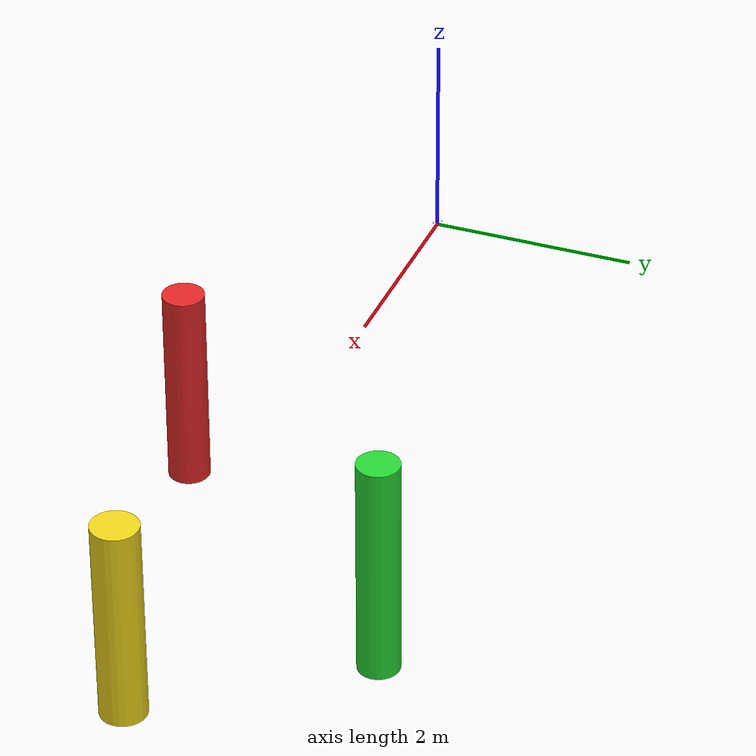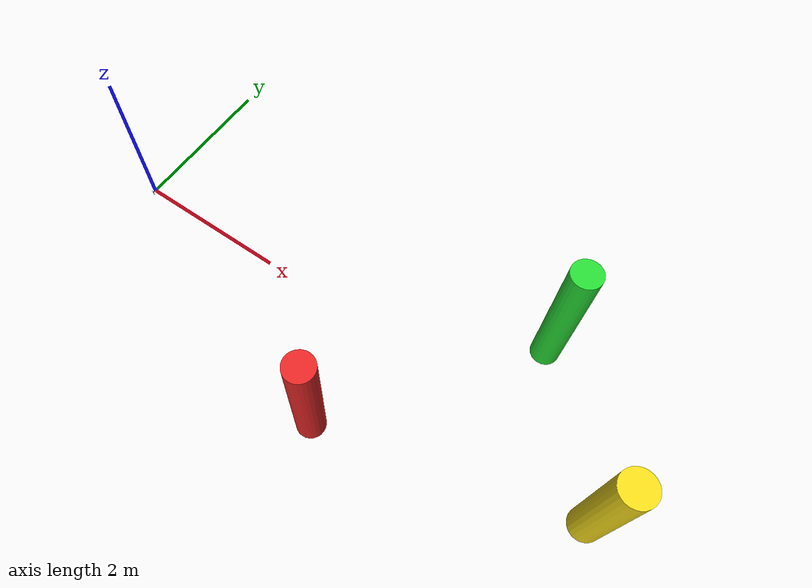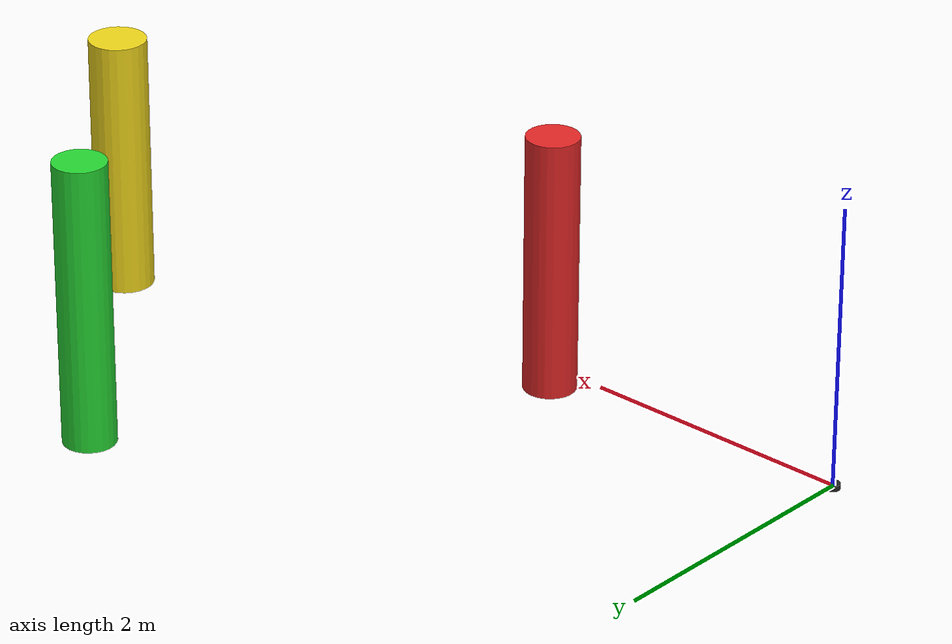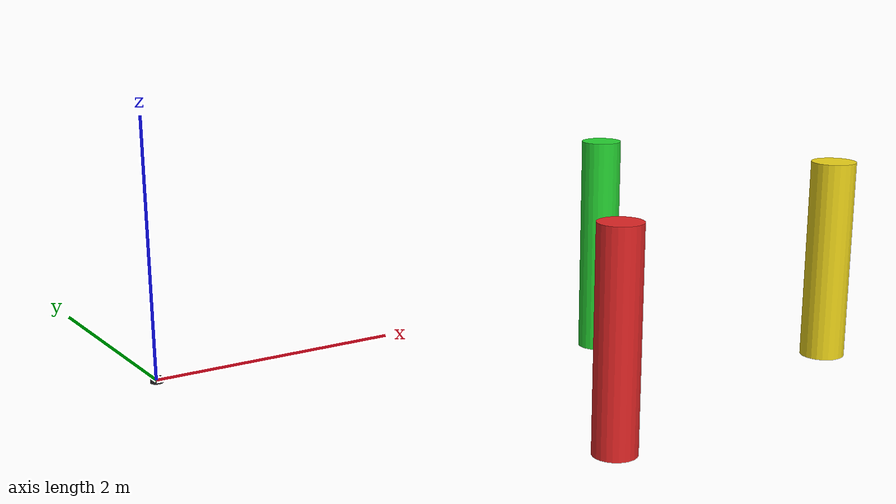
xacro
<?xml version="1.0"?>
<robot name="lidar_platform" xmlns:xacro="http://ros.org/wiki/xacro">
  <xacro:include filename="$(find prop_gazebo)/urdf/components/vlp16_lidar.xacro"/>

  <!-- Pin the whole model in place: no gravity fall, no buoyancy/water interaction -->
  <gazebo>
    <static>true</static>
  </gazebo>

  <!-- Bare root link, no chassis geometry/mass: just an anchor for the sensor -->
  <link name="base_link"/>

  <xacro:vlp16_lidar parent="base_link" xyz="0 0 0" rpy="0 0 0"/>

  <!-- Static buoy targets for perception/clustering validation -->
  <xacro:macro name="buoy" params="name xyz radius:='0.2' length:='2.0' rgba:='0.9 0.15 0.15 1.0'">
    <joint name="${name}_joint" type="fixed">
      <parent link="base_link"/>
      <child link="${name}"/>
      <origin xyz="${xyz}" rpy="0 0 0"/>
    </joint>
    <link name="${name}">
      <visual>
        <geometry>
          <cylinder radius="${radius}" length="${length}"/>
        </geometry>
        <material name="${name}_material">
          <color rgba="${rgba}"/>
        </material>
      </visual>
      <collision>
        <geometry>
          <cylinder radius="${radius}" length="${length}"/>
        </geometry>
      </collision>
    </link>
  </xacro:macro>

  <!-- Tall buoys placed in front of the lidar sensor in the water -->
  <!-- Red buoy (port marker) -->
  <xacro:buoy name="red_buoy" xyz="3.5 -1.2 0.0" radius="0.2" length="2.0" rgba="0.9 0.15 0.15 1.0"/>
  <!-- Green buoy (starboard marker) -->
  <xacro:buoy name="green_buoy" xyz="5.5 1.5 0.0" radius="0.2" length="2.2" rgba="0.15 0.85 0.2 1.0"/>
  <!-- Yellow marker buoy -->
  <xacro:buoy name="yellow_buoy" xyz="7.0 -0.3 0.0" radius="0.22" length="2.0" rgba="0.95 0.85 0.1 1.0"/>
</robot>

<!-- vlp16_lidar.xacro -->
<robot xmlns:xacro="http://ros.org/wiki/xacro">
  <xacro:include filename="$(find prop_gazebo)/urdf/macros/inertial.xacro"/>

  <!--
    Velodyne VLP-16 lidar mounted on a parent link.

    VLP-16 specs:
      - 16 vertical beams
      - +/-15 deg vertical FOV
      - 360 deg horizontal FOV
      - 10 Hz update rate
  -->
  <xacro:macro
    name="vlp16_lidar"
    params="parent:=chassis
            xyz:='0.1 0 0.175'
            rpy:='0 0 0'
            update_rate:=10
            horizontal_samples:=1875
            max_range:=100.0
            noise_stddev:=0.01"
  >
    <joint name="laser_joint" type="fixed">
      <parent link="${parent}"/>
      <child link="laser_frame"/>
      <origin xyz="${xyz}" rpy="${rpy}"/>
    </joint>

    <link name="laser_frame">
      <visual>
        <origin xyz="0 0 0" rpy="0 0 0"/>
        <geometry>
          <cylinder length="0.04" radius="0.05"/>
        </geometry>
        <material name="laser_material">
          <color rgba="0.13 0.13 0.13 1.0"/>
        </material>
      </visual>
      <collision>
        <origin xyz="0 0 0" rpy="0 0 0"/>
        <geometry>
          <cylinder length="0.04" radius="0.05"/>
        </geometry>
      </collision>
      <xacro:inertial_cylinder mass="0.1" length="0.04" radius="0.05">
        <origin xyz="0 0 0" rpy="0 0 0"/>
      </xacro:inertial_cylinder>
    </link>

    <gazebo reference="laser_frame">
      <sensor type="gpu_lidar" name="vlp16_sensor">
        <topic>lidar</topic>
        <gz_frame_id>laser_frame</gz_frame_id>
        <update_rate>${update_rate}</update_rate>
        <lidar>
          <scan>
            <horizontal>
              <samples>${horizontal_samples}</samples>
              <resolution>1</resolution>
              <min_angle>-3.14159</min_angle>
              <max_angle>3.14159</max_angle>
            </horizontal>
            <vertical>
              <samples>16</samples>
              <resolution>1</resolution>
              <min_angle>-0.261799</min_angle>
              <max_angle>0.261799</max_angle>
            </vertical>
          </scan>
          <range>
            <min>0.1</min>
            <max>${max_range}</max>
            <resolution>0.01</resolution>
          </range>
          <noise>
            <type>gaussian</type>
            <mean>0.0</mean>
            <stddev>${noise_stddev}</stddev>
          </noise>
        </lidar>
        <always_on>1</always_on>
        <visualize>true</visualize>
      </sensor>
    </gazebo>
  </xacro:macro>
</robot>

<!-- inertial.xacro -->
<robot xmlns:xacro="http://ros.org/wiki/xacro">
  <xacro:macro name="inertial_cylinder" params="mass length radius *origin">
    <inertial>
      <xacro:insert_block name="origin"/>
      <mass value="${mass}"/>
      <inertia
        ixx="${(mass / 12.0) * (3 * radius * radius + length * length)}"
        iyy="${(mass / 12.0) * (3 * radius * radius + length * length)}"
        izz="${(mass / 2.0) * (radius * radius)}"
        ixy="0"
        ixz="0"
        iyz="0"
      />
    </inertial>
  </xacro:macro>
</robot>
